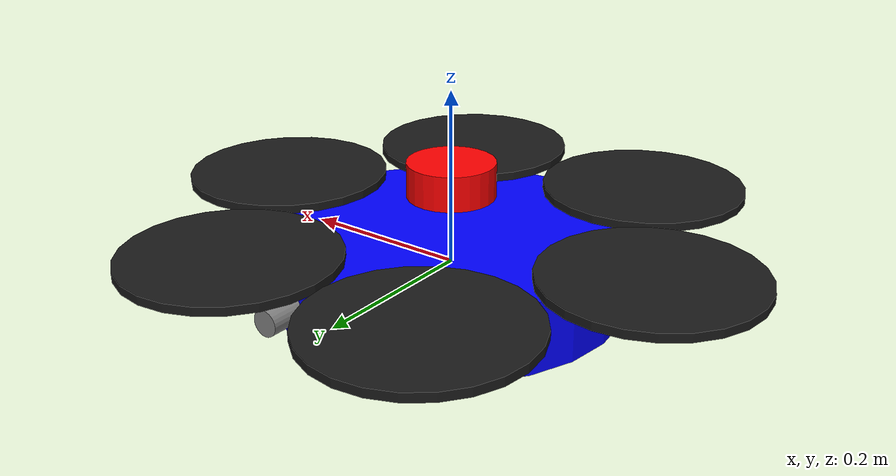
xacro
<?xml version="1.0"?>
<robot xmlns:xacro="[http://www.ros.org/wiki/xacro](http://www.ros.org/wiki/xacro)" name="hexacopter_robot">

  <!-- ================= BASE LINK ================= -->
  <link name="base_link">
    <visual>
      <geometry>
        <cylinder radius="0.2" length="0.08"/>
      </geometry>
      <material name="blue">
        <color rgba="0 0 1 1"/>
      </material>
    </visual>
    <collision>
      <geometry>
        <cylinder radius="0.2" length="0.08"/>
      </geometry>
    </collision>
    <inertial>
      <mass value="2.0"/>
      <inertia ixx="0.02" ixy="0" ixz="0" iyy="0.02" iyz="0" izz="0.04"/>
    </inertial>
  </link>

  <!-- Disable gravity for the base link to allow 3D hovering -->
  <gazebo reference="base_link">
    <gravity>false</gravity>
    <material>Gazebo/Blue</material>
  </gazebo>

  <!-- ================= ROTOR MACRO ================= -->
  <!-- A macro to cleanly generate 6 rotor arms and propellers -->
  <xacro:macro name="rotor" params="prefix angle">

    <!-- Arm connecting center to rotor -->
    <link name="${prefix}_arm">
      <visual>
        <geometry>
          <cylinder radius="0.015" length="0.25"/>
        </geometry>
        <origin xyz="${0.125 * cos(angle)} ${0.125 * sin(angle)} 0" rpy="1.5708 ${angle} 0"/>
        <material name="gray">
          <color rgba="0.5 0.5 0.5 1"/>
        </material>
      </visual>
    </link>
    <joint name="${prefix}_arm_joint" type="fixed">
      <parent link="base_link"/>
      <child link="${prefix}_arm"/>
    </joint>

    <!-- Propeller visually placed at the end of the arm -->
    <link name="${prefix}_prop">
      <visual>
        <geometry>
          <cylinder radius="0.12" length="0.01"/>
        </geometry>
        <material name="black">
          <color rgba="0.1 0.1 0.1 1"/>
        </material>
      </visual>
    </link>
    <joint name="${prefix}_prop_joint" type="fixed">
      <parent link="base_link"/>
      <child link="${prefix}_prop"/>
      <origin xyz="${0.25 * cos(angle)} ${0.25 * sin(angle)} 0.05" rpy="0 0 0"/>
    </joint>

    <gazebo reference="${prefix}_prop">
      <material>Gazebo/DarkGrey</material>
    </gazebo>
  </xacro:macro>

  <!-- Spawn 6 Rotors -->
  <xacro:rotor prefix="rotor_1" angle="0"/>
  <xacro:rotor prefix="rotor_2" angle="1.0472"/>
  <xacro:rotor prefix="rotor_3" angle="2.0944"/>
  <xacro:rotor prefix="rotor_4" angle="3.14159"/>
  <xacro:rotor prefix="rotor_5" angle="4.1888"/>
  <xacro:rotor prefix="rotor_6" angle="5.2360"/>

  <!-- ================= LIDAR JOINT & LINK ================= -->
  <joint name="lidar_joint" type="fixed">
    <origin xyz="0 0 0.1" rpy="0 0 0"/>
    <parent link="base_link"/>
    <child link="lidar_link"/>
  </joint>

  <link name="lidar_link">
    <visual>
      <geometry>
        <cylinder radius="0.05" length="0.04"/>
      </geometry>
      <material name="red">
        <color rgba="1 0 0 1"/>
      </material>
    </visual>
    <collision>
      <geometry>
        <cylinder radius="0.05" length="0.04"/>
      </geometry>
    </collision>
    <inertial>
      <mass value="0.1"/>
      <inertia ixx="0.000075" ixy="0" ixz="0" iyy="0.000075" iyz="0" izz="0.000125"/>
    </inertial>
  </link>

  <gazebo reference="lidar_link">
    <material>Gazebo/Red</material>
  </gazebo>

  <gazebo reference="lidar_joint">
    <preserveFixedJoint>true</preserveFixedJoint>
  </gazebo>

  <!-- ================= GAZEBO PLUGINS & SENSORS ================= -->

  <!-- Sensors System Plugin -->
  <gazebo>
    <plugin filename="gz-sim-sensors-system" name="gz::sim::systems::Sensors">
      <render_engine>ogre2</render_engine>
    </plugin>
  </gazebo>

  <!-- Velocity Control Plugin (Replaces DiffDrive for 3D flight) -->
  <gazebo>
    <plugin filename="gz-sim-velocity-control-system" name="gz::sim::systems::VelocityControl">
      <!-- This allows us to command linear X, Y, Z and angular Z via cmd_vel -->
      <topic>cmd_vel</topic>
    </plugin>
  </gazebo>

  <!-- Lidar Sensor Definition (Imported exact specs from your mobile robot) -->
  <gazebo reference="lidar_link">
    <sensor name="lidar" type="gpu_lidar">
      <pose relative_to="lidar_link">0 0 0 0 0 0</pose>
      <topic>scan</topic>
      <gz_frame_id>lidar_link</gz_frame_id>
      <update_rate>10</update_rate>
      <always_on>true</always_on>
      <visualize>true</visualize>

      <lidar>
        <scan>
          <horizontal>
            <samples>360</samples>
            <resolution>1</resolution>
            <min_angle>-3.14159</min_angle>
            <max_angle>3.14159</max_angle>
          </horizontal>
        </scan>
        <range>
          <min>0.15</min>
          <max>12.0</max>
          <resolution>0.01</resolution>
        </range>
        <noise>
          <type>gaussian</type>
          <mean>0.0</mean>
          <stddev>0.001</stddev>
        </noise>
      </lidar>
    </sensor>
  </gazebo>

</robot>
